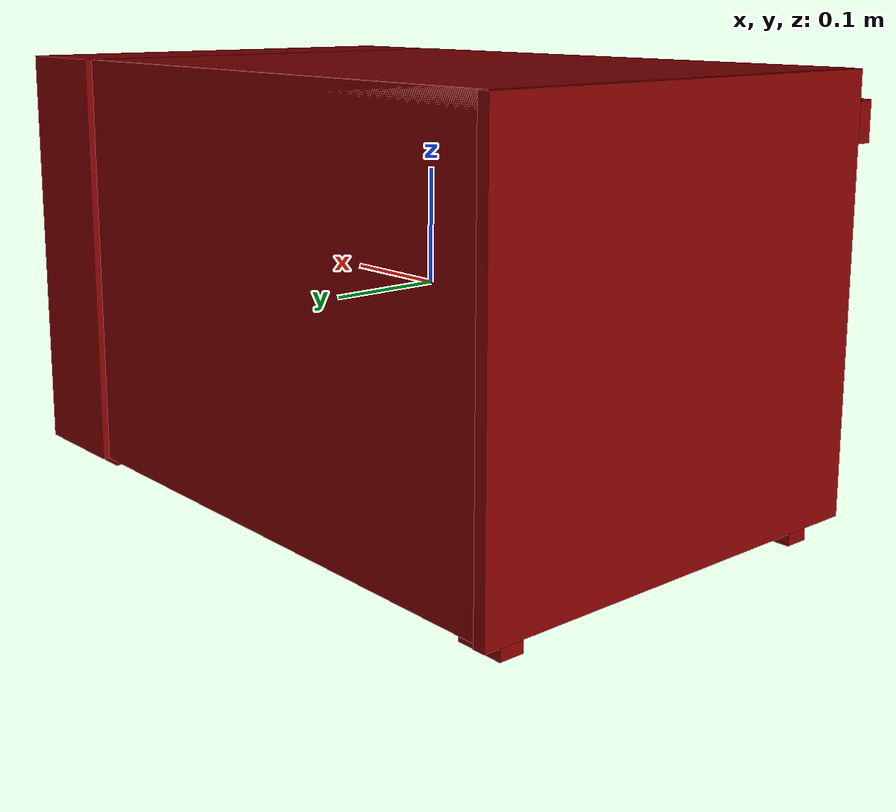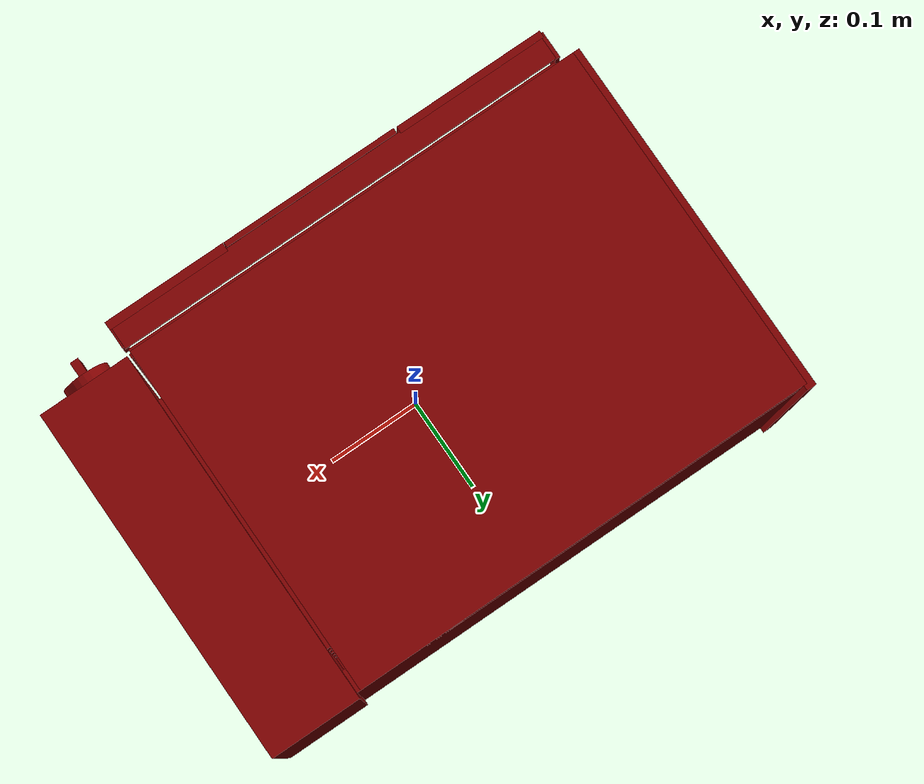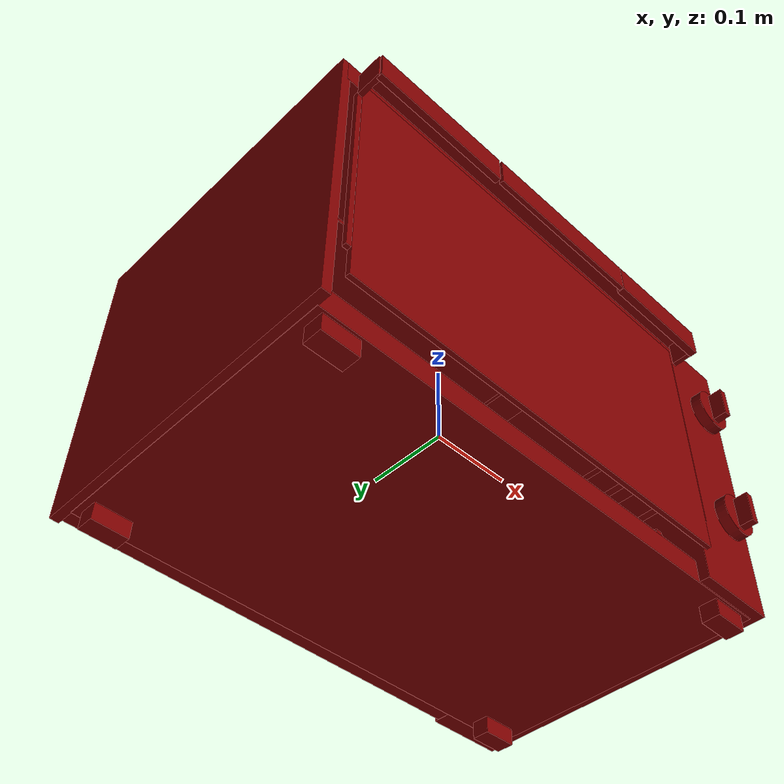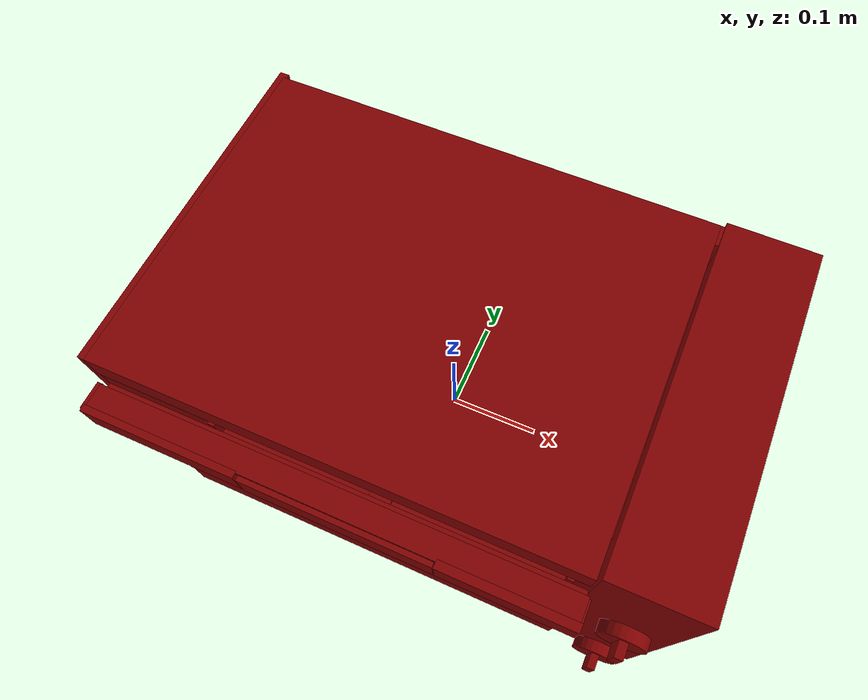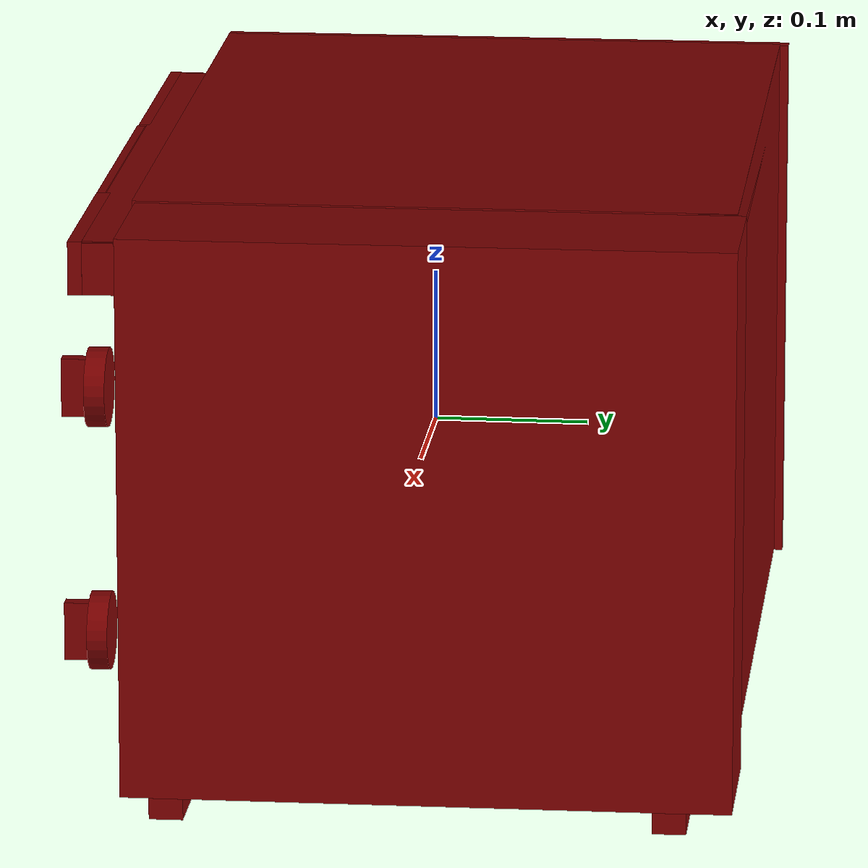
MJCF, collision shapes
<?xml version='1.0' encoding='UTF-8'?>
<mujoco model="model">
  <option timestep="0.002" gravity="0.0 0.0 -9.81"/>
  <compiler angle="radian"/>
  <asset>
    <mesh file="visuals/door.obj" name="door_vis"/>
    <mesh file="visuals/knob_temp.obj" name="knob_temp_vis"/>
    <mesh file="visuals/knob_time.obj" name="knob_time_vis"/>
    <mesh file="visuals/rack0.obj" name="rack0_vis"/>
    <mesh file="visuals/rack1.obj" name="rack1_vis"/>
    <mesh file="visuals/Body001.obj" name="Body001_vis"/>
    <mesh file="visuals/window.obj" name="window_vis"/>
    <texture file="visuals/T_BC001.png" name="Body001_material" type="2d"/>
    <material name="Body001_material" rgba="1 1 1 1.0" texture="Body001_material" shininess="0.1" specular="0.9"/>
    <texture file="visuals/T_BC001.png" name="door_material" type="2d"/>
    <material name="door_material" rgba="1 1 1 1.0" texture="door_material" shininess="0.1" specular="0.9"/>
    <material name="window_material" rgba="0.008668105117976665 0.008668105117976665 0.008668105117976665 0.75" shininess="0.1" specular="0.9"/>
    <texture file="visuals/T_BC001.png" name="knob_temp_material" type="2d"/>
    <material name="knob_temp_material" rgba="1 1 1 1.0" texture="knob_temp_material" shininess="0.1" specular="0.9"/>
    <texture file="visuals/T_BC001.png" name="knob_time_material" type="2d"/>
    <material name="knob_time_material" rgba="1 1 1 1.0" texture="knob_time_material" shininess="0.1" specular="0.9"/>
    <texture file="visuals/T_BC001.png" name="rack0_material" type="2d"/>
    <material name="rack0_material" rgba="1 1 1 1.0" texture="rack0_material" shininess="0.1" specular="0.9"/>
    <texture file="visuals/T_BC001.png" name="rack1_material" type="2d"/>
    <material name="rack1_material" rgba="1 1 1 1.0" texture="rack1_material" shininess="0.1" specular="0.9"/>
  </asset>
  <default>
    <default class="visual">
      <geom conaffinity="0" contype="0" group="1" type="mesh"/>
    </default>
    <default class="collision">
      <geom group="0" rgba="0.5 0 0 0.5"/>
    </default>
    <default class="spawn">
      <geom group="0" rgba="1 1 1 0.5" contype="0" conaffinity="0"/>
      <site group="0" rgba="1 1 1 0.5"/>
    </default>
    <default class="region">
      <geom group="1" conaffinity="0" contype="0" rgba="0 1 0 0"/>
    </default>
  </default>
  <worldbody>
    <body>
      <body name="object">
        <geom mesh="Body001_vis" type="mesh" solimp="0.998 0.998 0.001" solref="0.001 1" friction="0.95 0.3 0.1" class="visual" material="Body001_material"/>
        <geom class="collision" type="box" pos="-0.30069011 0.02121244 0.01117644" size="0.005303201265633106 0.193665012717247 0.18023677170276642" quat="1.0 0.0 0.0 0.0"/>
        <geom class="collision" type="box" pos="0.25721586 0.02244754 0.01136968" size="0.0487583689391613 0.19242991507053375 0.18043002486228943" quat="1.0 0.0 0.0 0.0"/>
        <geom class="collision" type="box" pos="-0.04748457 0.01832385 0.17652898" size="0.25154298543930054 0.19081459939479828 0.015270750969648361" quat="1.0 0.0 0.0 0.0"/>
        <geom class="collision" type="box" pos="0.00013293 0.01720533 -0.15613735" size="0.29652151465415955 0.17519906163215637 0.013958631083369255" quat="1.0 0.0 0.0 0.0"/>
        <geom class="collision" type="box" pos="-0.04528037 0.19683701 0.01117644" size="0.253353089094162 0.012301459908485413 0.18023677170276642" quat="1.0 0.0 0.0 0.0"/>
        <geom class="collision" type="box" pos="-0.26818714 -0.14401883 -0.17750821" size="0.021052880212664604 0.01082539465278387 0.012865323573350906" quat="1.0 0.0 0.0 0.0"/>
        <geom class="collision" type="box" pos="-0.26818714 0.17412535 -0.17750821" size="0.021052880212664604 0.01082539465278387 0.012865323573350906" quat="1.0 0.0 0.0 0.0"/>
        <geom class="collision" type="box" pos="0.26205215 -0.14401883 -0.17750821" size="0.021052880212664604 0.01082539465278387 0.012865323573350906" quat="1.0 0.0 0.0 0.0"/>
        <geom class="collision" type="box" pos="0.26205215 0.17412535 -0.17750821" size="0.021052880212664604 0.01082539465278387 0.012865323573350906" quat="1.0 0.0 0.0 0.0"/>
        <geom class="collision" type="box" pos="-0.29083449 0.01685596 -0.10381443" size="0.005254597868770361 0.14185310900211334 0.016649998724460602" quat="1.0 0.0 0.0 0.0"/>
        <geom class="collision" type="box" pos="-0.29083449 0.01685596 -0.04270269" size="0.005254597868770361 0.1418531835079193 0.01665000431239605" quat="1.0 0.0 0.0 0.0"/>
        <geom class="collision" type="box" pos="-0.29083449 0.01685596 0.01732166" size="0.005254597868770361 0.1418532431125641 0.016650008037686348" quat="1.0 0.0 0.0 0.0"/>
        <geom class="collision" type="box" pos="-0.29083449 0.01685596 0.07778096" size="0.005254597868770361 0.14185330271720886 0.016650011762976646" quat="1.0 0.0 0.0 0.0"/>
        <geom class="collision" type="box" pos="-0.29083449 0.01685596 0.13867523" size="0.005254597868770361 0.14185337722301483 0.016650015488266945" quat="1.0 0.0 0.0 0.0"/>
        <geom class="collision" type="box" pos="0.20451559 0.01685596 -0.10250955" size="0.005254597868770361 0.1418534368276596 0.016650021076202393" quat="1.0 0.0 0.0 0.0"/>
        <geom class="collision" type="box" pos="0.20451559 0.01685596 -0.04139781" size="0.005254597868770361 0.14185351133346558 0.01665002480149269" quat="1.0 0.0 0.0 0.0"/>
        <geom class="collision" type="box" pos="0.20451559 0.01685596 0.01862654" size="0.005254597868770361 0.14185357093811035 0.01665002852678299" quat="1.0 0.0 0.0 0.0"/>
        <geom class="collision" type="box" pos="0.20451559 0.01685596 0.07908584" size="0.005254597868770361 0.14185363054275513 0.016650032252073288" quat="1.0 0.0 0.0 0.0"/>
        <geom class="collision" type="box" pos="0.19660936 0.01685596 0.13998011" size="0.016755202785134315 0.1418537050485611 0.016650035977363586" quat="1.0 0.0 0.0 0.0"/>
        <body name="door">
          <joint axis="1.0 0.0 0.0" pos="-0.03691904 -0.18163800 -0.15601335" limited="true" name="door_joint" range="0.0 1.4207963267948966" type="hinge" damping="1" frictionloss="1" armature=".01" stiffness="0.5" springref="-0.5"/>
          <geom mesh="door_vis" type="mesh" solimp="0.998 0.998 0.001" solref="0.001 1" friction="0.95 0.3 0.1" class="visual" material="door_material"/>
          <geom class="collision" type="box" pos="-0.04064416 -0.17811599 0.00788022" size="0.24481405317783356 0.002745889127254486 0.14820615947246552" quat="1.0 0.0 0.0 0.0" name="door_main"/>
          <geom class="collision" type="box" pos="-0.02392543 -0.21040760 0.14812468" size="0.09729541838169098 0.002704515354707837 0.017366085201501846" quat="1.0 0.0 0.0 0.0" name="door_handle_main"/>
          <geom class="collision" type="box" pos="-0.20695688 -0.20876178 0.14812468" size="0.08250312507152557 0.003682220121845603 0.01736615039408207" quat="1.0 0.0 0.0 0.0"/>
          <geom class="collision" type="box" pos="0.14125143 -0.20873189 0.14812468" size="0.06699861586093903 0.004479993600398302 0.01736615039408207" quat="1.0 0.0 0.0 0.0"/>
          <geom class="collision" type="box" pos="-0.04052720 -0.19425173 0.16341084" size="0.246731236577034 0.01281094178557396 0.0020609558559954166" quat="1.0 0.0 0.0 0.0"/>
          <geom class="collision" type="box" pos="-0.28844497 -0.19526277 0.14791681" size="0.0028735920786857605 0.014514204114675522 0.016910886391997337" quat="1.0 0.0 0.0 0.0"/>
          <geom class="collision" type="box" pos="0.20523858 -0.19817739 0.14791681" size="0.0028735920786857605 0.014514204114675522 0.016910890117287636" quat="1.0 0.0 0.0 0.0"/>
          <body name="window">
            <geom mesh="window_vis" type="mesh" solimp="0.998 0.998 0.001" solref="0.001 1" friction="0.95 0.3 0.1" class="visual" material="window_material"/>
            <geom class="collision" type="box" pos="-0.04241021 -0.17792496 0.01433173" size="0.24888765811920166 0.0025548848789185286 0.11963823437690735" quat="1.0 0.0 0.0 0.0"/>
          </body>
        </body>
        <body name="knob_temp">
          <joint axis="0.0 1.0 0.0" pos="0.25404352 -0.19629216 0.08363557" limited="true" name="knob_temp_joint" range="0.0 5.585053606381854" type="hinge" damping="0.05" armature="1" frictionloss="0.75"/>
          <geom mesh="knob_temp_vis" type="mesh" solimp="0.998 0.998 0.001" solref="0.001 1" friction="0.95 0.3 0.1" class="visual" material="knob_temp_material"/>
          <geom class="collision" type="cylinder" pos="0.25404352 -0.18742397 0.08363557" size="0.02517274022102356 0.006519017741084099" quat="0.7071067094802856 -0.70710688829422 0.0 0.0" friction="100 0.5 0.01"/>
          <geom class="collision" type="box" pos="0.25386342 -0.20193812 0.08356727" size="0.0045868270099163055 0.008810549974441528 0.018689638003706932" quat="1.0 0.0 0.0 0.0" name="knob_temp_main" friction="100 0.5 0.01"/>
        </body>
        <body name="knob_time">
          <joint axis="0.0 1.0 0.0" pos="0.25404352 -0.19629216 -0.07517023" limited="true" name="knob_time_joint" range="0.0 4.014257279586958" type="hinge" damping="0.05" armature="1" frictionloss="0.75"/>
          <geom mesh="knob_time_vis" type="mesh" solimp="0.998 0.998 0.001" solref="0.001 1" friction="0.95 0.3 0.1" class="visual" material="knob_time_material"/>
          <geom class="collision" type="cylinder" pos="0.25404352 -0.18742397 -0.07517023" size="0.02489914372563362 0.006448163650929928" quat="0.7071067094802856 -0.70710688829422 0.0 0.0" friction="100 0.5 0.01"/>
          <geom class="collision" type="box" pos="0.25386342 -0.20193812 -0.07546905" size="0.0045868270099163055 0.008810552768409252 0.018689638003706932" quat="1.0 0.0 0.0 0.0" name="knob_time_main" friction="100 0.5 0.01"/>
        </body>
        <body name="rack0">
          <geom class="region" name="reg_rack0" type="box" pos="-0.04297605999999998 0.04677568 -0.013596899999999999" size="0.24092058 0.13099103 0.05784385"/>
          <joint axis="0.0 -1.0 0.0" pos="0.00000003 0.00322003 0.00002356" limited="true" name="rack0_joint" range="0.0 0.25" type="slide" damping="1" frictionloss="1" armature=".01" stiffness="0.05"/>
          <geom mesh="rack0_vis" type="mesh" solimp="0.998 0.998 0.001" solref="0.001 1" friction="0.95 0.3 0.1" class="visual" material="rack0_material"/>
          <geom class="collision" type="box" pos="-0.04181359 0.04732807 -0.07554054" size="0.2438378632068634 0.13231125473976135 0.002236341591924429" quat="1.0 0.0 0.0 0.0"/>
          <geom class="collision" type="box" pos="-0.04592083 -0.12253066 -0.08305053" size="0.014828873798251152 0.03774874657392502 0.0022363264579325914" quat="1.0 0.0 0.0 0.0"/>
          <geom class="collision" type="box" pos="-0.04181359 -0.08474294 -0.07897063" size="0.21091271936893463 0.002236359054222703 0.00481604877859354" quat="0.968393087387085 -0.2494291216135025 0.0 0.0"/>
          <geom class="collision" type="box" pos="-0.04181359 -0.09599703 -0.08524916" size="0.20646363496780396 0.00893833115696907 0.0022363278549164534" quat="1.0 0.0 0.0 0.0"/>
        </body>
        <body name="rack1">
          <geom class="region" name="reg_rack1" type="box" pos="-0.04297605999999998 0.035727199999999994 0.10599604500000001" size="0.24092058 0.14203951 0.054650065000000005"/>
          <joint axis="0.0 -1.0 0.0" pos="0.00000003 0.00322003 0.00002356" limited="true" name="rack1_joint" range="0.0 0.25" type="slide" damping="1" frictionloss="1" armature=".01" stiffness="0.05"/>
          <geom mesh="rack1_vis" type="mesh" solimp="0.998 0.998 0.001" solref="0.001 1" friction="0.95 0.3 0.1" class="visual" material="rack1_material"/>
          <geom class="collision" type="box" pos="-0.04322736 0.03647302 0.04847294" size="0.2447032779455185 0.1431661993265152 0.002236340194940567" quat="1.0 0.0 0.0 0.0"/>
        </body>
        <geom class="region" name="reg_int" type="box" pos="-0.04208145999999999 0.009628134999999996 0.01002436999999999" size="0.24021339 0.174757865 0.14910337"/>
        <geom class="region" name="reg_main" type="box" pos="0.0 0.01700783 0.0" size="0.30699326 0.19886972 0.19281073"/>
      </body>
    </body>
  </worldbody>
  <actuator>
    <motor name="door_joint_actuator" joint="door_joint" gear="50"/>
    <motor name="knob_temp_joint_actuator" joint="knob_temp_joint" gear="50"/>
    <motor name="knob_time_joint_actuator" joint="knob_time_joint" gear="50"/>
    <motor name="rack0_joint_actuator" joint="rack0_joint" gear="50"/>
    <motor name="rack1_joint_actuator" joint="rack1_joint" gear="50"/>
  </actuator>
</mujoco>
